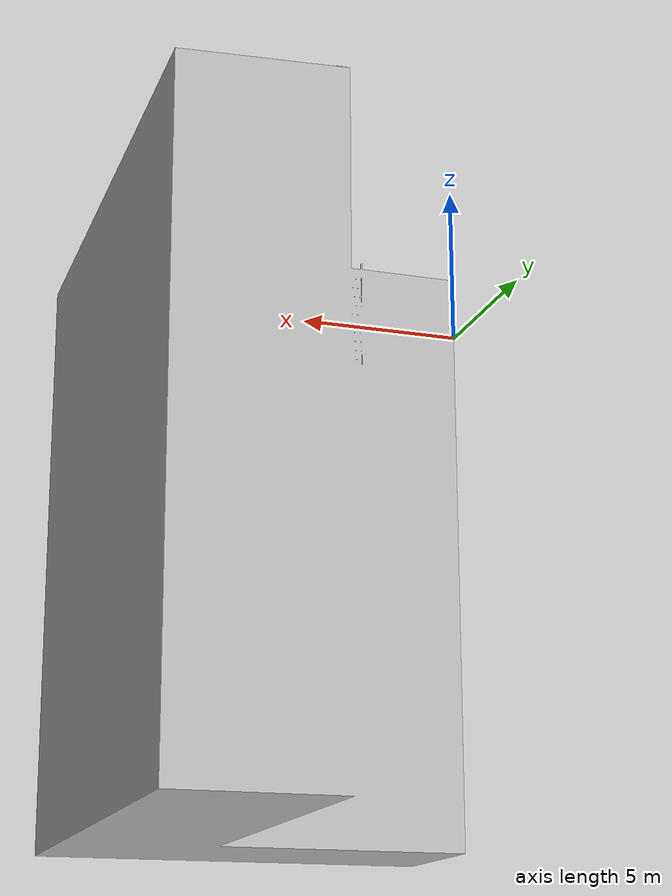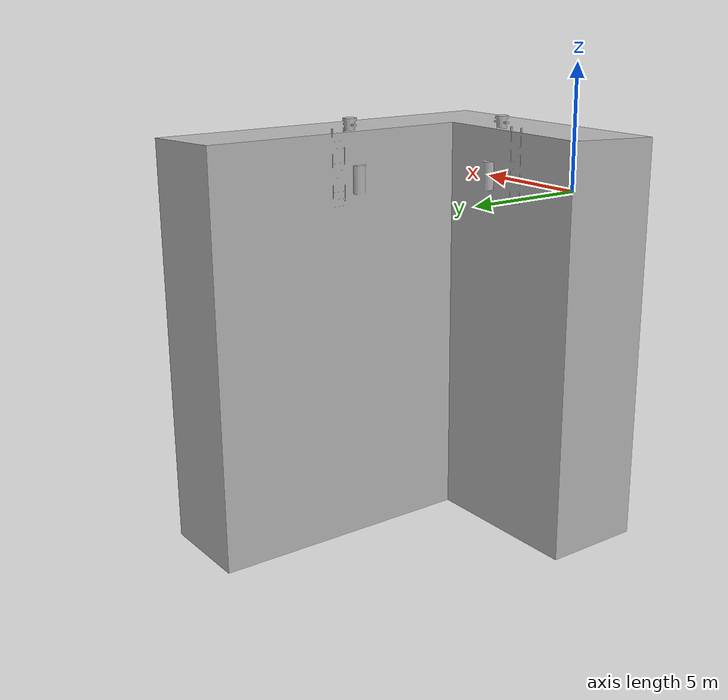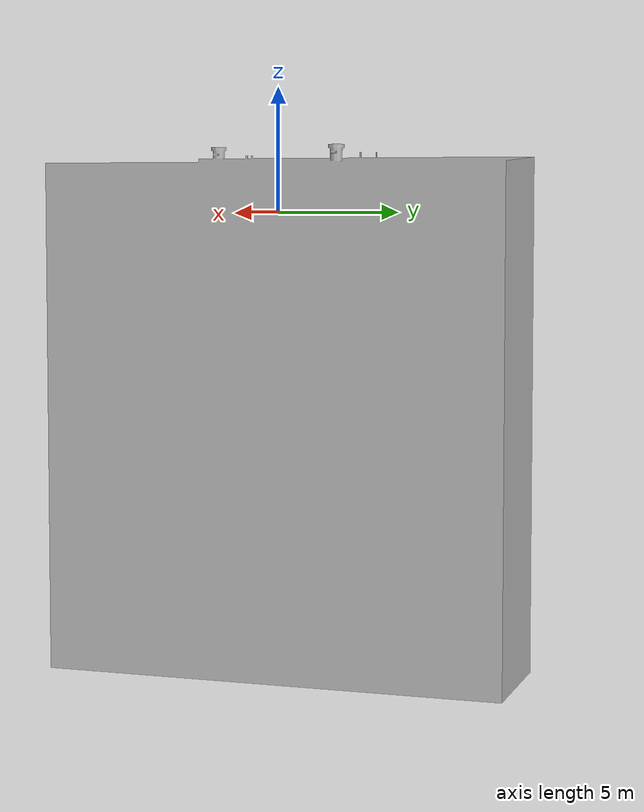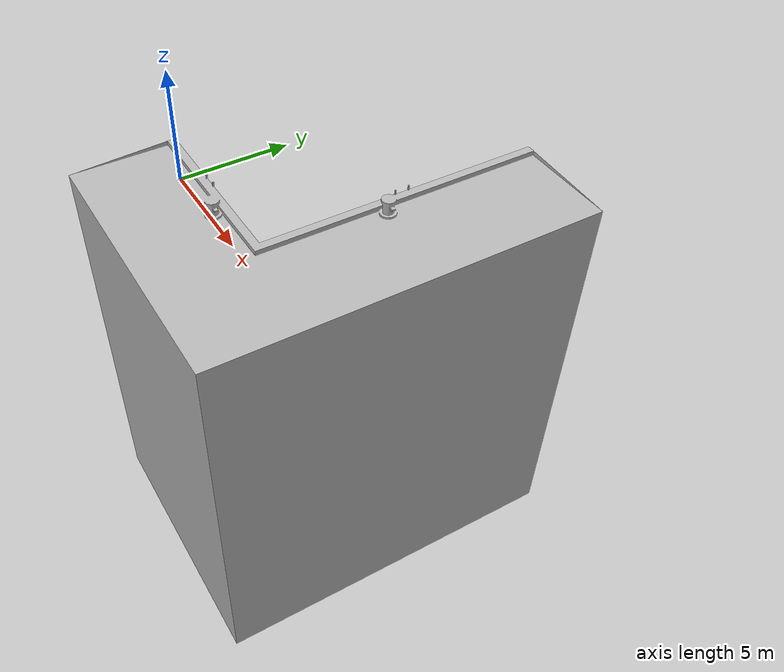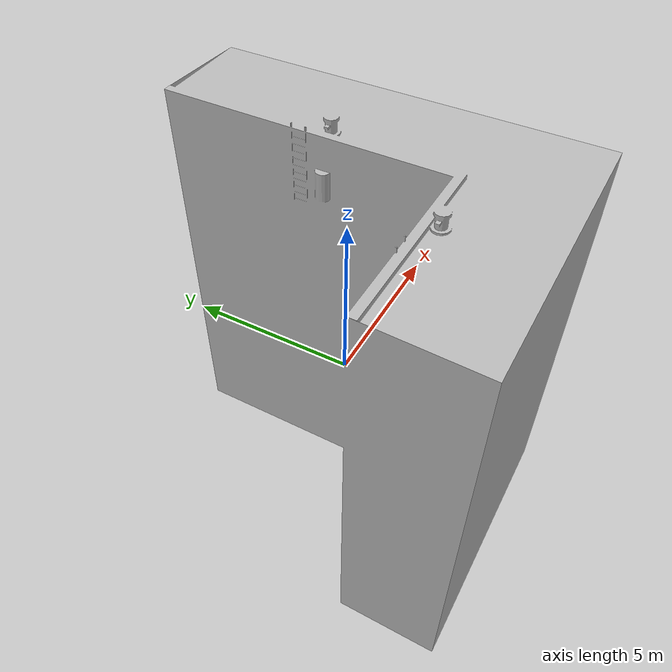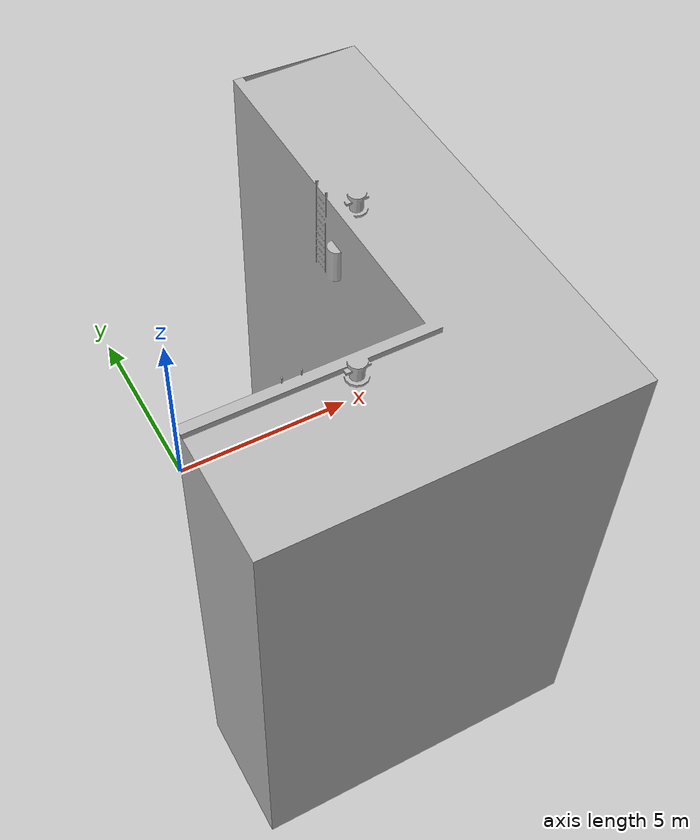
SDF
<?xml version="1.0" ?>
<sdf version="1.9">
  <model name="harbor_wall_corner">
    <static>true</static>
    <link name="quay_link">
      <!-- Arm 1 Collision (Along X) -->
      <collision name="arm1_collision">
        <pose>3.7500 -2.2500 -7.1000 0 0 0</pose>
        <geometry>
          <box>
            <size>7.5000 4.5000 18.2000</size>
          </box>
        </geometry>
        <surface>
          <friction>
            <ode>
              <mu>0.9</mu>
              <mu2>0.9</mu2>
            </ode>
          </friction>
        </surface>
      </collision>

      <!-- Arm 2 Collision (Along Y) -->
      <collision name="arm2_collision">
        <pose>9.7500 3.7500 -7.1000 0 0 0</pose>
        <geometry>
          <box>
            <size>4.5000 16.5000 18.2000</size>
          </box>
        </geometry>
        <surface>
          <friction>
            <ode>
              <mu>0.9</mu>
              <mu2>0.9</mu2>
            </ode>
          </friction>
        </surface>
      </collision>

      <!-- High-Fidelity Photorealistic Visual Mesh -->
      <visual name="quay_visual">
        <pose>0 0 0 0 0 0</pose>
        <geometry>
          <mesh>
            <uri>model://harbor_wall_corner/meshes/harbor_wall_corner.obj</uri>
          </mesh>
        </geometry>
      </visual>
    </link>
  </model>
</sdf>
